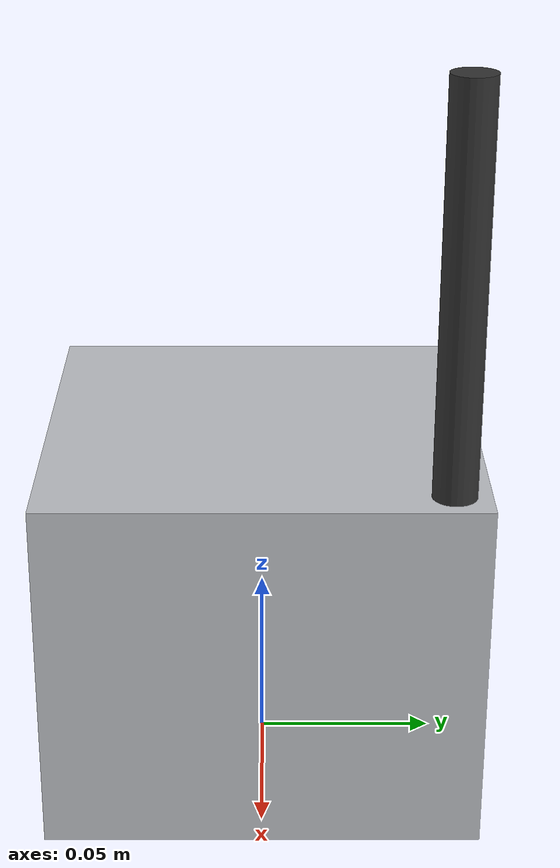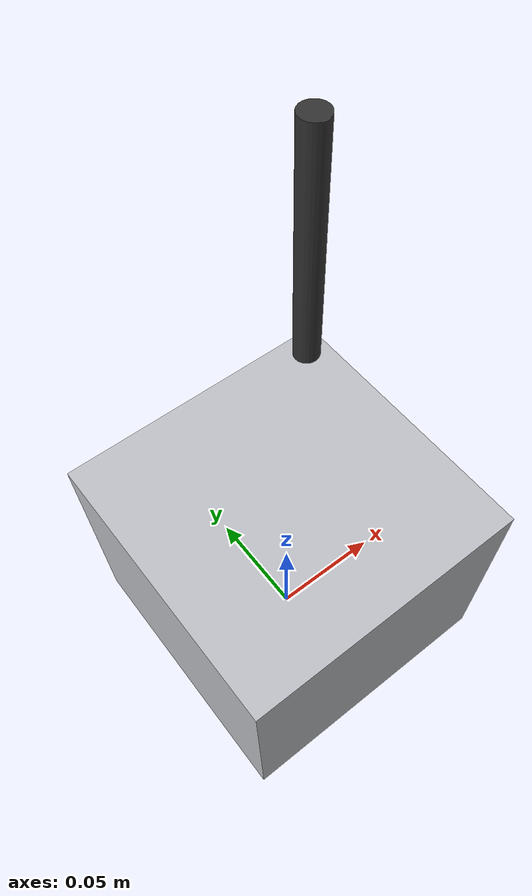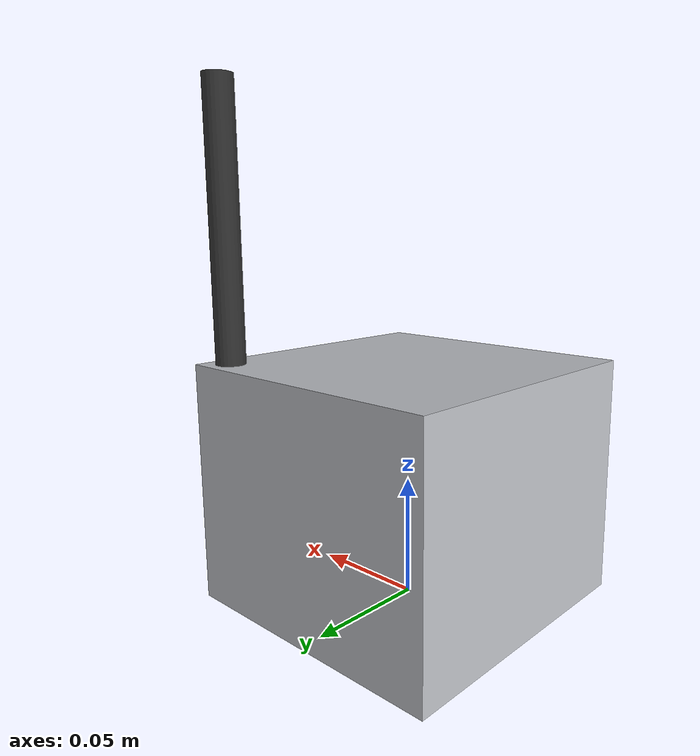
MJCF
<?xml version="1.0" encoding="utf-8"?>
<mujoco model="soldering_station">
  <compiler angle="radian" autolimits="true"/>
  <default>
    <default class="body"><geom contype="1" conaffinity="1"/></default>
  </default>
  <worldbody>
    <body name="base">
      <geom type="box" size="0.06 0.06 0.05" pos="0 0 0.05" rgba="0.75 0.76 0.78 1" class="body"/>
      <body name="iron_holder" pos="0.05 0.05 0.13">
        <joint name="iron_holder_joint" type="hinge" axis="0 0 1" range="-1.0 1.0" damping="0.3" frictionloss="0.5"/>
  <geom type="cylinder" size="0.006 0.08" pos="0 0 0" rgba="0.2 0.2 0.2 1" class="body"/>
      </body>
    </body>
  </worldbody>
</mujoco>
